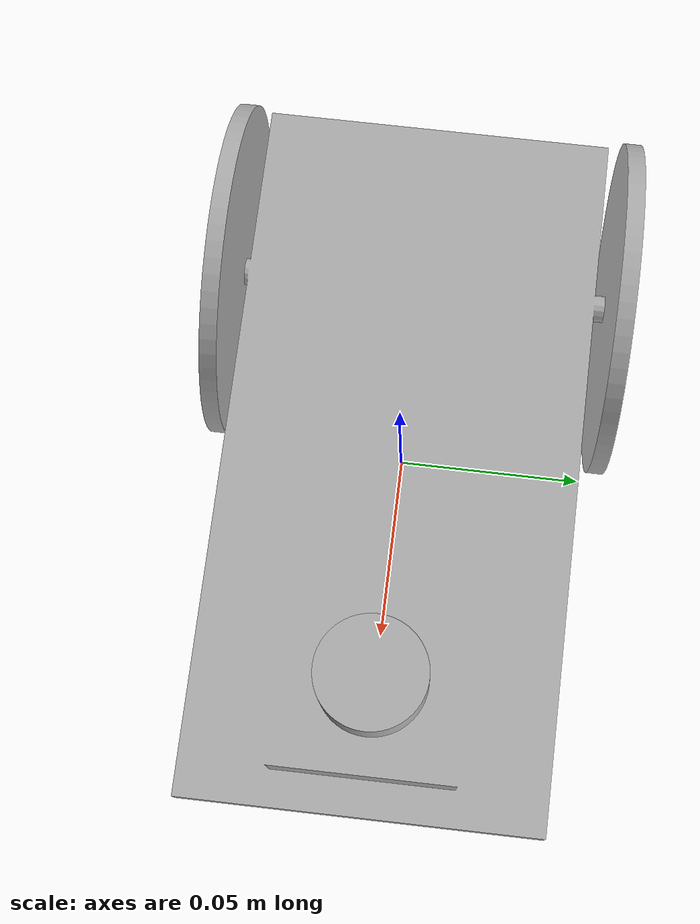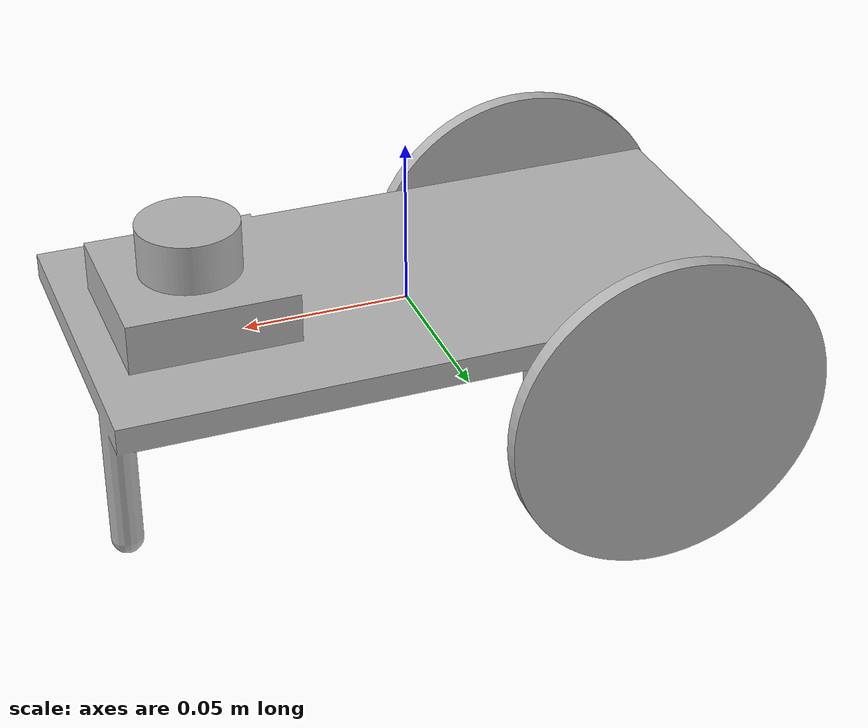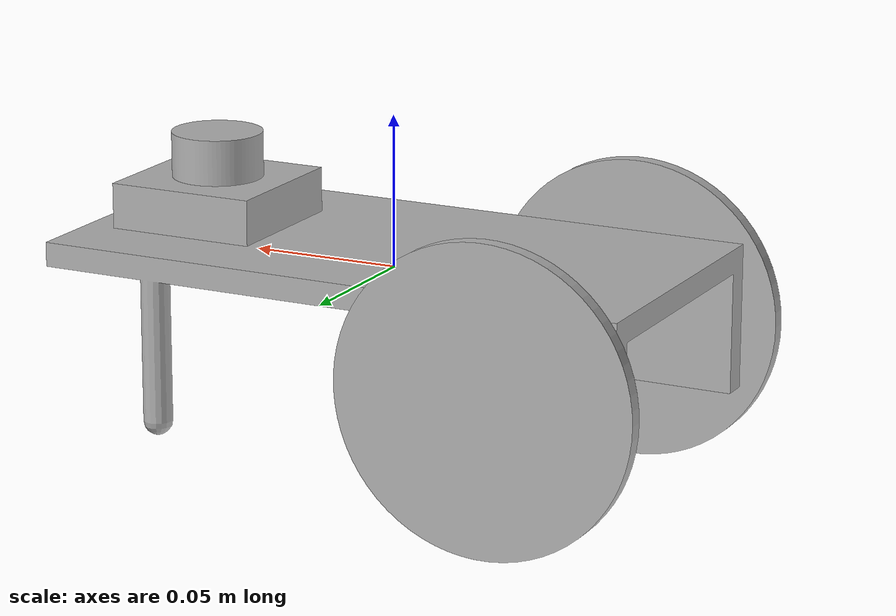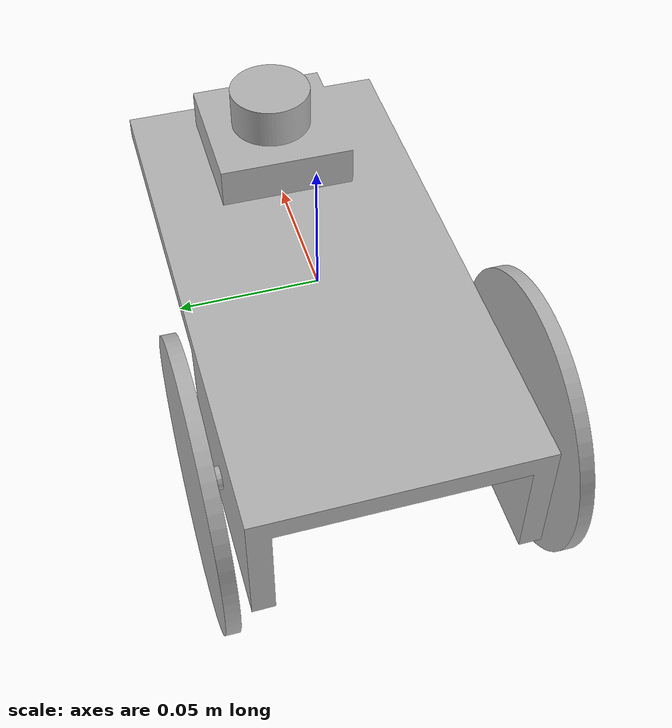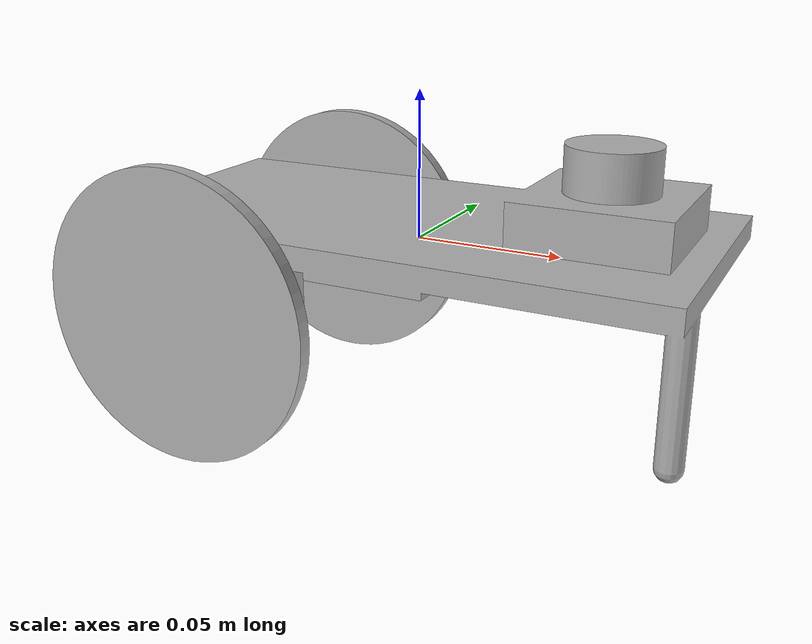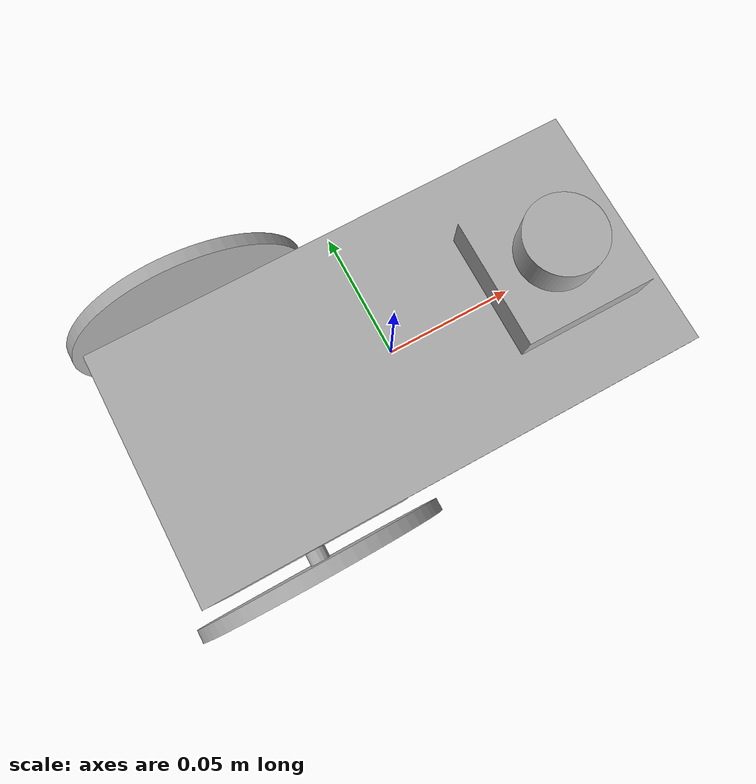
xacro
<?xml version="1.0" ?>
<robot name="Day3" xmlns:xacro="http://www.ros.org/wiki/xacro">

<xacro:include filename="$(find Day3_description)/urdf/materials.xacro" />
<xacro:include filename="$(find Day3_description)/urdf/Day3.trans" />
<xacro:include filename="$(find Day3_description)/urdf/Day3.gazebo" />
<link name="base_link">
  <inertial>
    <origin xyz="-0.0007135159114692553 6.252184428201031e-17 1.4823876407274034e-05" rpy="0 0 0"/>
    <mass value="1.9983709068544875"/>
    <inertia ixx="0.002356" iyy="0.007892" izz="0.009479" ixy="0.0" iyz="0.0" ixz="-0.000654"/>
  </inertial>
  <visual>
    <origin xyz="0 0 0" rpy="0 0 0"/>
    <geometry>
      <mesh filename="package://Day3_description/meshes/base_link.stl" scale="0.001 0.001 0.001"/>
    </geometry>
    <material name="silver"/>
  </visual>
  <collision>
    <origin xyz="0 0 0" rpy="0 0 0"/>
    <geometry>
      <mesh filename="package://Day3_description/meshes/base_link.stl" scale="0.001 0.001 0.001"/>
    </geometry>
  </collision>
</link>

<link name="left_wheel_1">
  <inertial>
    <origin xyz="7.632783294297951e-17 0.0025000000000000022 1.0755285551056204e-16" rpy="0 0 0"/>
    <mass value="0.30826877913349837"/>
    <inertia ixx="0.000193" iyy="0.000385" izz="0.000193" ixy="0.0" iyz="-0.0" ixz="0.0"/>
  </inertial>
  <visual>
    <origin xyz="0.06 -0.055 0.02" rpy="0 0 0"/>
    <geometry>
      <mesh filename="package://Day3_description/meshes/left_wheel_1.stl" scale="0.001 0.001 0.001"/>
    </geometry>
    <material name="silver"/>
  </visual>
  <collision>
    <origin xyz="0.06 -0.055 0.02" rpy="0 0 0"/>
    <geometry>
      <mesh filename="package://Day3_description/meshes/left_wheel_1.stl" scale="0.001 0.001 0.001"/>
    </geometry>
  </collision>
</link>

<link name="right_wheel_1">
  <inertial>
    <origin xyz="-3.469446951953614e-17 -0.0025000000000000022 6.938893903907228e-18" rpy="0 0 0"/>
    <mass value="0.3082687791334984"/>
    <inertia ixx="0.000193" iyy="0.000385" izz="0.000193" ixy="-0.0" iyz="0.0" ixz="0.0"/>
  </inertial>
  <visual>
    <origin xyz="0.06 0.055 0.02" rpy="0 0 0"/>
    <geometry>
      <mesh filename="package://Day3_description/meshes/right_wheel_1.stl" scale="0.001 0.001 0.001"/>
    </geometry>
    <material name="silver"/>
  </visual>
  <collision>
    <origin xyz="0.06 0.055 0.02" rpy="0 0 0"/>
    <geometry>
      <mesh filename="package://Day3_description/meshes/right_wheel_1.stl" scale="0.001 0.001 0.001"/>
    </geometry>
  </collision>
</link>

<link name="lidar_1">
  <inertial>
    <origin xyz="1.3877787807814457e-17 -2.220446049250313e-18 0.007500000000000003" rpy="0 0 0"/>
    <mass value="0.08323257036604459"/>
    <inertia ixx="6e-06" iyy="6e-06" izz="9e-06" ixy="-0.0" iyz="-0.0" ixz="-0.0"/>
  </inertial>
  <visual>
    <origin xyz="-0.065 -0.0 -0.023" rpy="0 0 0"/>
    <geometry>
      <mesh filename="package://Day3_description/meshes/lidar_1.stl" scale="0.001 0.001 0.001"/>
    </geometry>
    <material name="silver"/>
  </visual>
  <collision>
    <origin xyz="-0.065 -0.0 -0.023" rpy="0 0 0"/>
    <geometry>
      <mesh filename="package://Day3_description/meshes/lidar_1.stl" scale="0.001 0.001 0.001"/>
    </geometry>
  </collision>
</link>

<joint name="Rev10" type="continuous">
  <origin xyz="-0.06 0.055 -0.02" rpy="0 0 0"/>
  <parent link="base_link"/>
  <child link="left_wheel_1"/>
  <axis xyz="0.0 -1.0 0.0"/>
</joint>

<joint name="Rev11" type="continuous">
  <origin xyz="-0.06 -0.055 -0.02" rpy="0 0 0"/>
  <parent link="base_link"/>
  <child link="right_wheel_1"/>
  <axis xyz="0.0 -1.0 0.0"/>
</joint>

<joint name="Rev12" type="continuous">
  <origin xyz="0.065 0.0 0.023" rpy="0 0 0"/>
  <parent link="base_link"/>
  <child link="lidar_1"/>
  <axis xyz="0.0 0.0 1.0"/>
</joint>

</robot>

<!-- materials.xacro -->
<robot name="Day3" xmlns:xacro="http://www.ros.org/wiki/xacro" >

<material name="silver">
  <color rgba="0.700 0.700 0.700 1.000"/>
</material>

</robot>

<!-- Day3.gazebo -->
<robot name="Day3" xmlns:xacro="http://www.ros.org/wiki/xacro" >

<xacro:property name="body_color" value="Gazebo/Silver" />

<gazebo>
  <plugin name="control" filename="libgazebo_ros_control.so"/>
</gazebo>
<gazebo reference="base_link">
  <material>${body_color}</material>
  <mu1>0.2</mu1>
  <mu2>0.2</mu2>
  <selfCollide>true</selfCollide>
  <gravity>true</gravity>
</gazebo>

<gazebo reference="left_wheel_1">
  <material>${body_color}</material>
  <mu1>0.2</mu1>
  <mu2>0.2</mu2>
  <selfCollide>true</selfCollide>
</gazebo>

<gazebo reference="right_wheel_1">
  <material>${body_color}</material>
  <mu1>0.2</mu1>
  <mu2>0.2</mu2>
  <selfCollide>true</selfCollide>
</gazebo>

<gazebo reference="lidar_1">
  <material>${body_color}</material>
  <mu1>0.2</mu1>
  <mu2>0.2</mu2>
  <selfCollide>true</selfCollide>
</gazebo>

</robot>
